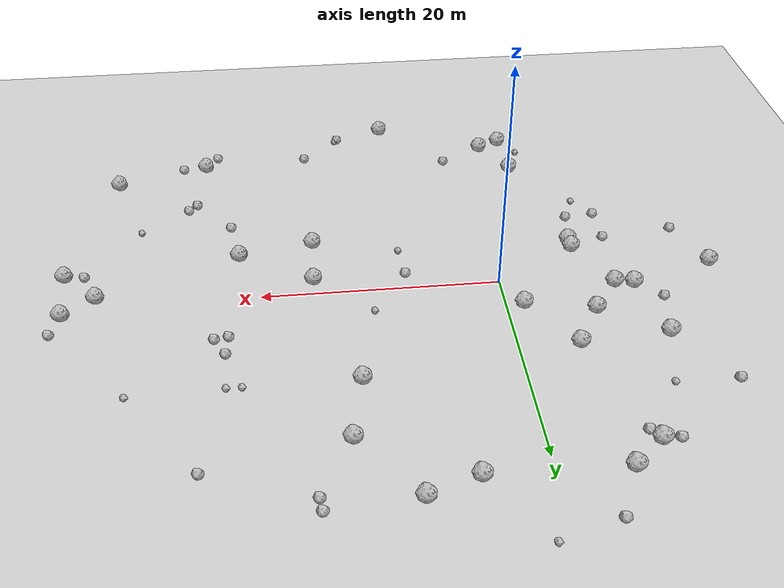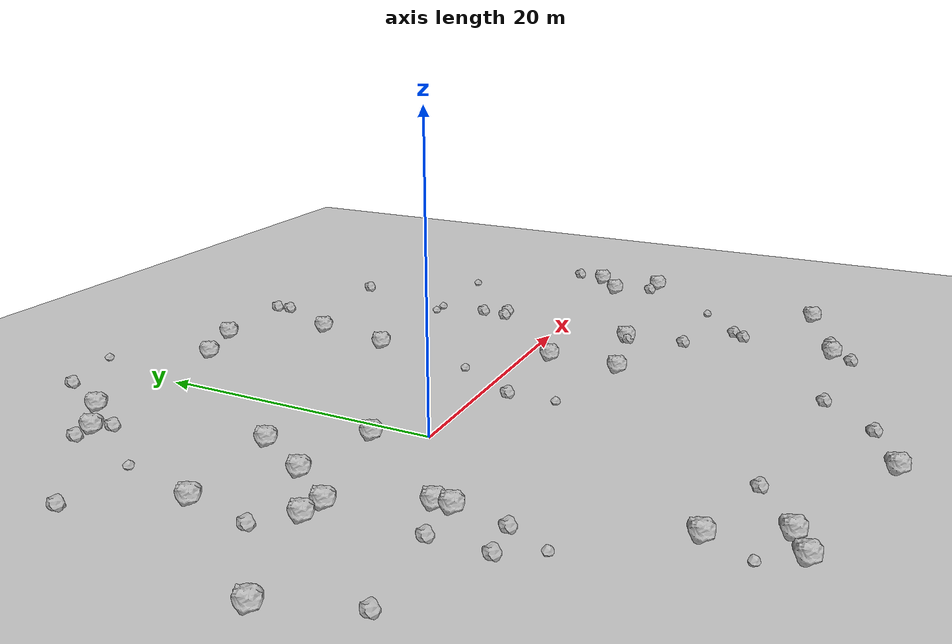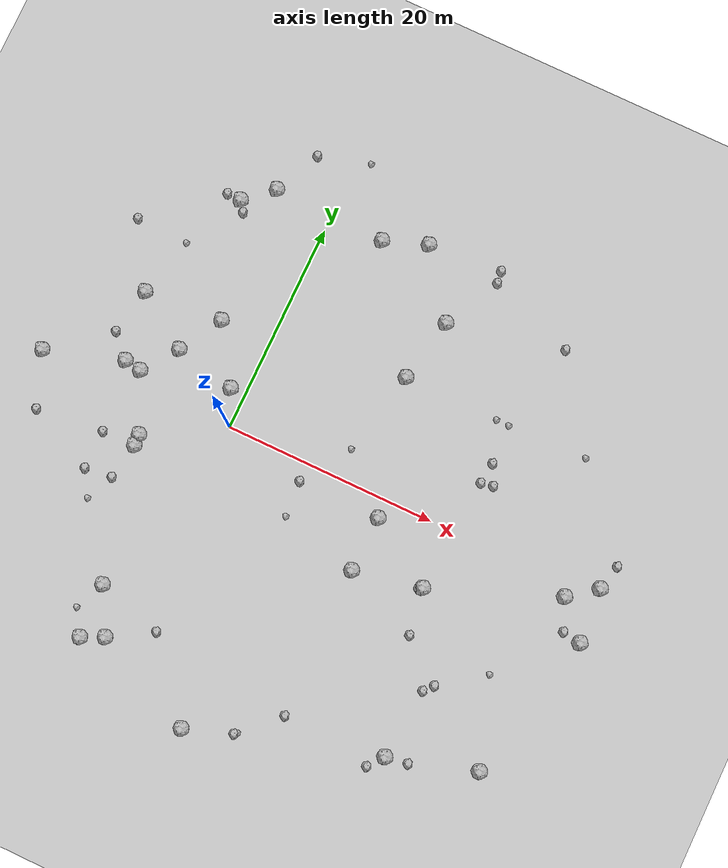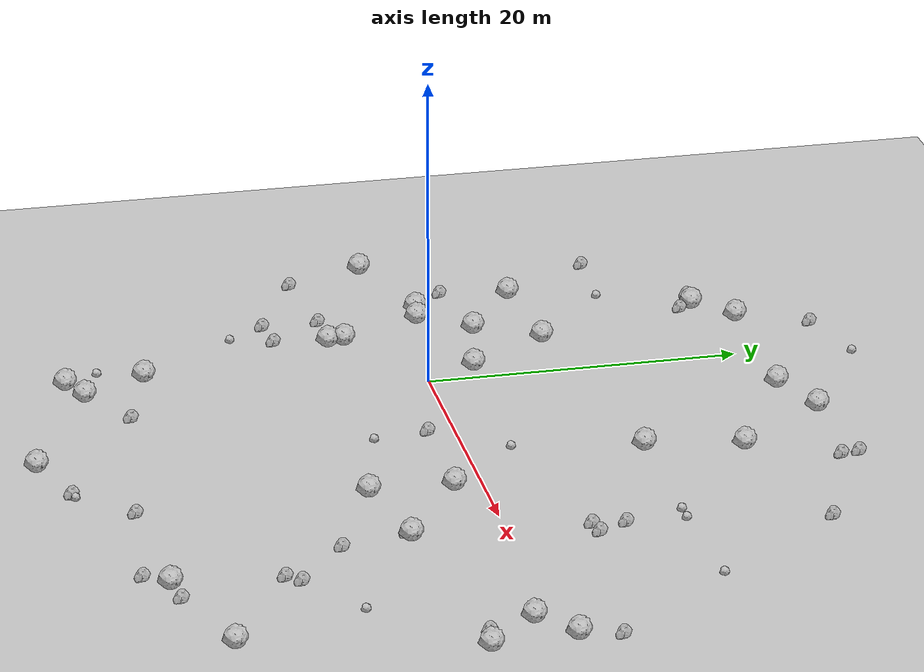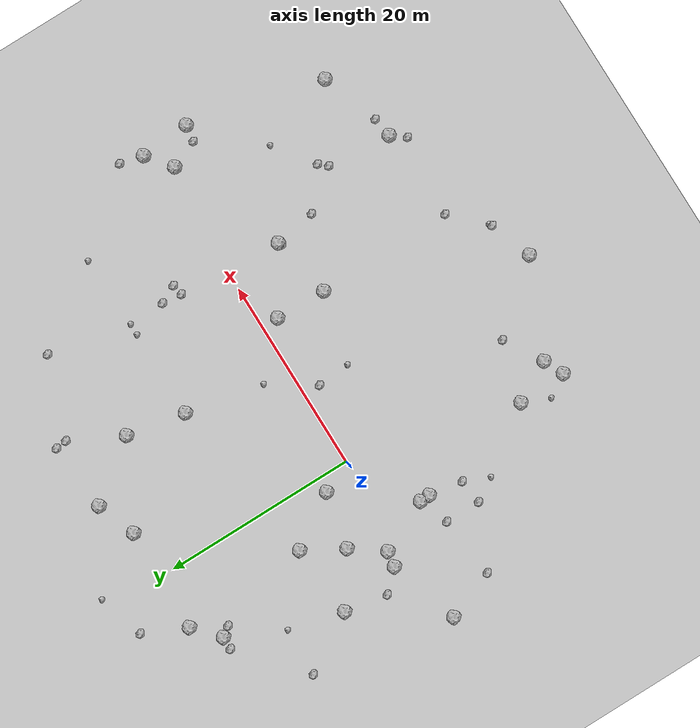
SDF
<sdf version="1.6">
 <world name="default">
  <include><uri>model://custom_ground</uri></include>
  <include><uri>model://sun</uri></include>
  <model name="rock1_0_0">
   <include><uri>model://rock1</uri><pose>-18.3554256299761 -0.8736387125041354 0.5 0 0 0</pose></include>
  </model>
  <model name="rock1_0_1">
   <include><uri>model://rock1</uri><pose>-11.117513339005576 1.4484345504251053 0.5 0 0 0</pose></include>
  </model>
  <model name="rock1_0_2">
   <include><uri>model://rock1</uri><pose>15.420586032131304 -6.97239388748444 0.5 0 0 0</pose></include>
  </model>
  <model name="rock1_0_3">
   <include><uri>model://rock1</uri><pose>-1.428237766085335 3.2156876742978397 0.5 0 0 0</pose></include>
  </model>
  <model name="rock1_0_4">
   <include><uri>model://rock1</uri><pose>7.727987030799962 -25.987101020668593 0.5 0 0 0</pose></include>
  </model>
  <model name="rock1_0_5">
   <include><uri>model://rock1</uri><pose>13.642779727651714 16.909072541101594 0.5 0 0 0</pose></include>
  </model>
  <model name="rock1_0_6">
   <include><uri>model://rock1</uri><pose>33.556714146757656 -1.0128879427130926 0.5 0 0 0</pose></include>
  </model>
  <model name="rock1_0_7">
   <include><uri>model://rock1</uri><pose>33.070485443908446 -18.156992440177937 0.5 0 0 0</pose></include>
  </model>
  <model name="rock1_0_8">
   <include><uri>model://rock1</uri><pose>21.79771678929623 -5.688780286805809 0.5 0 0 0</pose></include>
  </model>
  <model name="rock1_0_9">
   <include><uri>model://rock1</uri><pose>36.46240503108014 -4.162233522423666 0.5 0 0 0</pose></include>
  </model>
  <model name="rock1_0_10">
   <include><uri>model://rock1</uri><pose>25.01887447976599 -20.555709112987397 0.5 0 0 0</pose></include>
  </model>
  <model name="rock1_0_11">
   <include><uri>model://rock1</uri><pose>-12.263296120027965 7.89504189724137 0.5 0 0 0</pose></include>
  </model>
  <model name="rock1_0_12">
   <include><uri>model://rock1</uri><pose>9.214269222641718 22.827229892223436 0.5 0 0 0</pose></include>
  </model>
  <model name="rock1_0_13">
   <include><uri>model://rock1</uri><pose>-4.8686404893557995 8.474588985718349 0.5 0 0 0</pose></include>
  </model>
  <model name="rock1_0_14">
   <include><uri>model://rock1</uri><pose>-5.526882922278704 21.56909924106602 0.5 0 0 0</pose></include>
  </model>
  <model name="rock1_0_15">
   <include><uri>model://rock1</uri><pose>-4.100725002524721 -17.574050393754053 0.5 0 0 0</pose></include>
  </model>
  <model name="rock1_0_16">
   <include><uri>model://rock1</uri><pose>-9.525316424813719 1.1926285499723512 0.5 0 0 0</pose></include>
  </model>
  <model name="rock1_0_17">
   <include><uri>model://rock1</uri><pose>-7.058738284920631 -4.104013358105544 0.5 0 0 0</pose></include>
  </model>
  <model name="rock1_0_18">
   <include><uri>model://rock1</uri><pose>15.574710040196308 -1.7353222334232719 0.5 0 0 0</pose></include>
  </model>
  <model name="rock1_0_19">
   <include><uri>model://rock1</uri><pose>5.1720518612440785 21.344476843395434 0.5 0 0 0</pose></include>
  </model>
  <model name="rock1_0_20">
   <include><uri>model://rock1</uri><pose>-8.108151208895176 19.2590952053258 0.5 0 0 0</pose></include>
  </model>
  <model name="rock1_0_21">
   <include><uri>model://rock1</uri><pose>12.468474040914543 10.855675110598987 0.5 0 0 0</pose></include>
  </model>
  <model name="rock1_0_22">
   <include><uri>model://rock1</uri><pose>-3.8867653958283483 -22.608318471364235 0.5 0 0 0</pose></include>
  </model>
  <model name="rock1_0_23">
   <include><uri>model://rock1</uri><pose>-7.011666181019439 -5.152750772076445 0.5 0 0 0</pose></include>
  </model>
  <model name="rock1_0_24">
   <include><uri>model://rock1</uri><pose>-7.166404070583468 4.440676341268208 0.5 0 0 0</pose></include>
  </model>
  <model name="rock1_0_25">
   <include><uri>model://rock1</uri><pose>-1.8506823339004157 -21.65955347349154 0.5 0 0 0</pose></include>
  </model>
  <model name="rock1_0_26">
   <include><uri>model://rock1</uri><pose>36.11518519640164 0.9886216196213802 0.5 0 0 0</pose></include>
  </model>
  <model name="rock2_0_0">
   <include><uri>model://rock2</uri><pose>23.693230865221565 5.267143341048751 0.3 0 0 0</pose></include>
  </model>
  <model name="rock2_0_1">
   <include><uri>model://rock2</uri><pose>-7.633288472252689 -8.606525182506594 0.3 0 0 0</pose></include>
  </model>
  <model name="rock2_0_2">
   <include><uri>model://rock2</uri><pose>36.71083210632222 3.4228751149210908 0.3 0 0 0</pose></include>
  </model>
  <model name="rock2_0_3">
   <include><uri>model://rock2</uri><pose>23.905768866795533 -22.023853762079067 0.3 0 0 0</pose></include>
  </model>
  <model name="rock2_0_4">
   <include><uri>model://rock2</uri><pose>16.320432029543227 22.271745437663803 0.3 0 0 0</pose></include>
  </model>
  <model name="rock2_0_5">
   <include><uri>model://rock2</uri><pose>34.74006000884111 -3.895885514258616 0.3 0 0 0</pose></include>
  </model>
  <model name="rock2_0_6">
   <include><uri>model://rock2</uri><pose>-15.891832086969739 13.746266071822475 0.3 0 0 0</pose></include>
  </model>
  <model name="rock2_0_7">
   <include><uri>model://rock2</uri><pose>7.783063344215783 -1.738038924789553 0.3 0 0 0</pose></include>
  </model>
  <model name="rock2_0_8">
   <include><uri>model://rock2</uri><pose>22.497739120578906 -9.992544367602921 0.3 0 0 0</pose></include>
  </model>
  <model name="rock2_0_9">
   <include><uri>model://rock2</uri><pose>15.507907019454699 -21.121759211765667 0.3 0 0 0</pose></include>
  </model>
  <model name="rock2_0_10">
   <include><uri>model://rock2</uri><pose>25.61821589275403 -13.943143640709835 0.3 0 0 0</pose></include>
  </model>
  <model name="rock2_0_11">
   <include><uri>model://rock2</uri><pose>-13.124862266021623 3.4909629702981775 0.3 0 0 0</pose></include>
  </model>
  <model name="rock2_0_12">
   <include><uri>model://rock2</uri><pose>-7.445969083288199 18.33259179384703 0.3 0 0 0</pose></include>
  </model>
  <model name="rock2_0_13">
   <include><uri>model://rock2</uri><pose>24.476231466828743 19.3190034472753 0.3 0 0 0</pose></include>
  </model>
  <model name="rock2_0_14">
   <include><uri>model://rock2</uri><pose>22.552377003030948 5.055558269202471 0.3 0 0 0</pose></include>
  </model>
  <model name="rock2_0_15">
   <include><uri>model://rock2</uri><pose>-9.494107905261917 19.324101409345694 0.3 0 0 0</pose></include>
  </model>
  <model name="rock2_0_16">
   <include><uri>model://rock2</uri><pose>27.106773929064907 -20.262573861364007 0.3 0 0 0</pose></include>
  </model>
  <model name="rock2_0_17">
   <include><uri>model://rock2</uri><pose>-10.188949994500828 -8.895530271203292 0.3 0 0 0</pose></include>
  </model>
  <model name="rock2_0_18">
   <include><uri>model://rock2</uri><pose>22.78352362491379 7.089481815616416 0.3 0 0 0</pose></include>
  </model>
  <model name="rock2_0_19">
   <include><uri>model://rock2</uri><pose>-3.5475721921079355 26.017543397973526 0.3 0 0 0</pose></include>
  </model>
  <model name="rock2_0_20">
   <include><uri>model://rock2</uri><pose>-16.51096002946173 -5.943299387653088 0.3 0 0 0</pose></include>
  </model>
  <model name="rock2_0_21">
   <include><uri>model://rock2</uri><pose>21.46666972147797 -5.90016558236163 0.3 0 0 0</pose></include>
  </model>
  <model name="rock2_0_22">
   <include><uri>model://rock2</uri><pose>-10.181853133115562 -5.231280807970215 0.3 0 0 0</pose></include>
  </model>
  <model name="rock2_0_23">
   <include><uri>model://rock2</uri><pose>12.111226400191399 -24.463446933794124 0.3 0 0 0</pose></include>
  </model>
  <model name="rock2_0_24">
   <include><uri>model://rock2</uri><pose>2.0254279802466684 -19.327963202281424 0.3 0 0 0</pose></include>
  </model>
  <model name="rock2_0_25">
   <include><uri>model://rock2</uri><pose>26.35647157501792 -13.096829909684377 0.3 0 0 0</pose></include>
  </model>
  <model name="rock2_0_26">
   <include><uri>model://rock2</uri><pose>16.171301909867317 23.43210970812686 0.3 0 0 0</pose></include>
  </model>
  <model name="rock3_0_0">
   <include><uri>model://rock3</uri><pose>-8.797253218383197 -11.258566156526367 0.2 0 0 0</pose></include>
  </model>
  <model name="rock3_0_1">
   <include><uri>model://rock3</uri><pose>22.673613491739964 10.818339028497675 0.2 0 0 0</pose></include>
  </model>
  <model name="rock3_0_2">
   <include><uri>model://rock3</uri><pose>-10.919392695370096 13.559707705248464 0.2 0 0 0</pose></include>
  </model>
  <model name="rock3_0_3">
   <include><uri>model://rock3</uri><pose>-5.365061728335876 -20.413784593499567 0.2 0 0 0</pose></include>
  </model>
  <model name="rock3_0_4">
   <include><uri>model://rock3</uri><pose>30.378490131550898 -10.137976040769288 0.2 0 0 0</pose></include>
  </model>
  <model name="rock3_0_5">
   <include><uri>model://rock3</uri><pose>1.2291533670183732 27.437988150542118 0.2 0 0 0</pose></include>
  </model>
  <model name="rock3_0_6">
   <include><uri>model://rock3</uri><pose>12.345557872824251 -24.291033518227756 0.2 0 0 0</pose></include>
  </model>
  <model name="rock3_0_7">
   <include><uri>model://rock3</uri><pose>8.002031749050754 -5.158613142657451 0.2 0 0 0</pose></include>
  </model>
  <model name="rock3_0_8">
   <include><uri>model://rock3</uri><pose>21.46290273004226 10.83191468560716 0.2 0 0 0</pose></include>
  </model>
  <model name="rock3_0_9">
   <include><uri>model://rock3</uri><pose>30.1690534776329 11.092696721672695 0.2 0 0 0</pose></include>
  </model>
  <model name="rock3_0_10">
   <include><uri>model://rock3</uri><pose>10.749686489708584 2.8445145088360846 0.2 0 0 0</pose></include>
  </model>
 </world>
</sdf>
